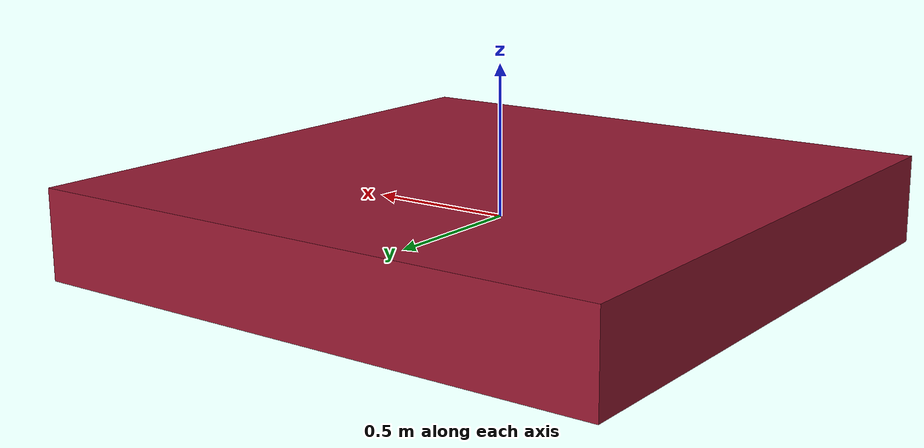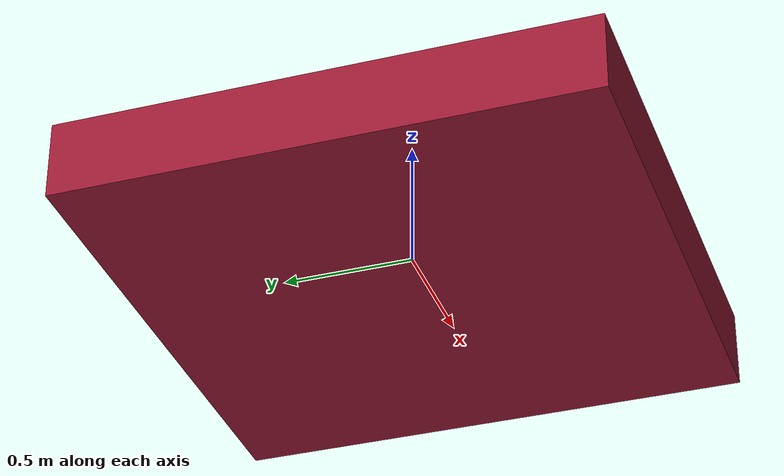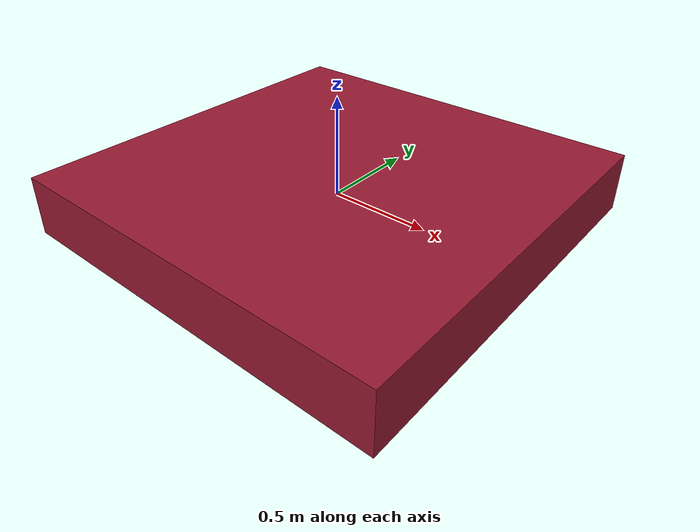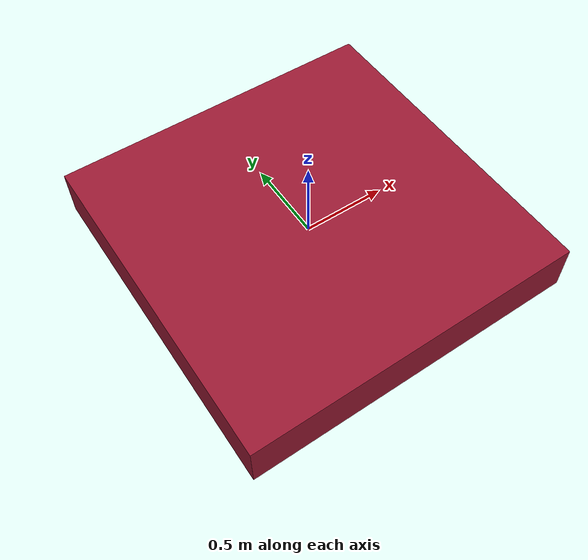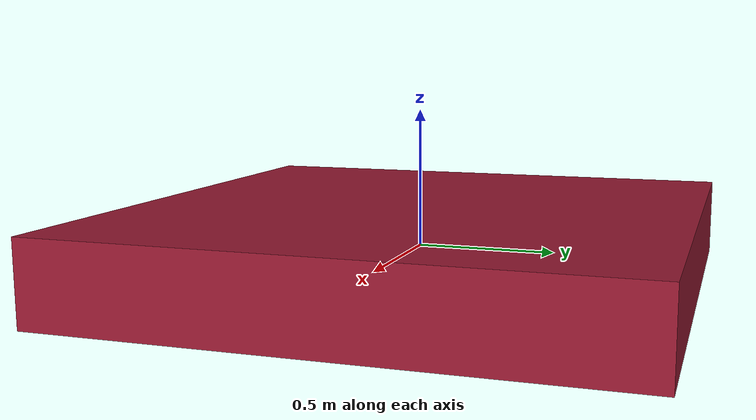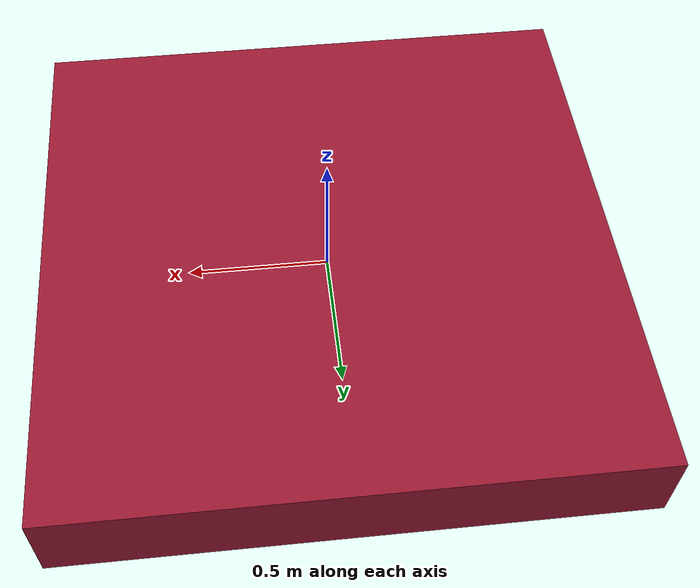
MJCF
<mujoco model="box">
  <asset>
    <texture file="../textures/milk.png" name="tex-milk" type="2d"/>
    <material name="milk" reflectance="0.5" texrepeat="1 1" texture="tex-milk" texuniform="true"/>
  </asset>
  <worldbody>
    <body>
      <body name="object">
        <geom name="box_geom" pos="0. 0. 0." type="box" size="1 1 0.15" friction="0.0000001 0.0000005 0.0000001" rgba="0.6 0.1 0.2 1" group="0" material="milk"/>
      </body>
      <site rgba="0 0 0 0" size="0.005" pos="0 0 -0.05" name="bottom_site"/>
      <site rgba="0 0 0 0" size="0.005" pos="0 0 0.05" name="top_site"/>
      <site rgba="0 0 0 0" size="0.005" pos="0.05 0.05 0" name="horizontal_radius_site"/>
    </body>
  </worldbody>
</mujoco>
